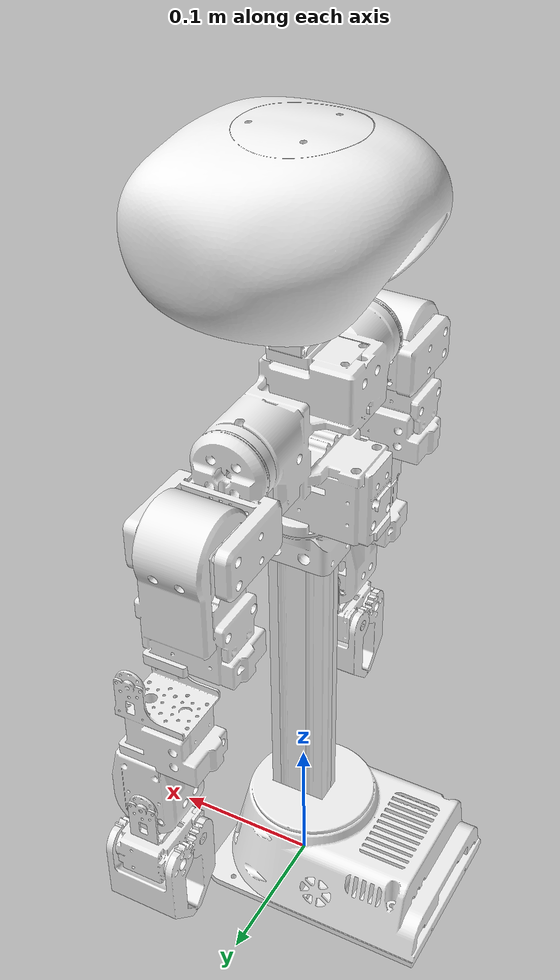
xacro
<?xml version="1.0" ?>
<robot name="rakuda" xmlns:xacro="http://www.ros.org/wiki/xacro">

<xacro:include filename="$(find rakuda_description)/urdf/materials.xacro" />
<xacro:include filename="$(find rakuda_description)/urdf/rakuda.ros2control" />
<xacro:include filename="$(find rakuda_description)/urdf/rakuda.gazebo" />
<xacro:include filename="$(find rakuda_description)/urdf/gemini_335_336.urdf.xacro" />

<!-- Used for fixing robot 'base_link'  to Gazebo 'world' -->
<link name="world"/>

<joint name="base_link_to_world_joint" type="fixed">
  <parent link="world"/>
  <child link="base_link"/>
</joint>

<link name="base_link">
  <inertial>
    <origin xyz="-0.020408922979267937 -4.8555006463835264e-05 0.05284203414197219" rpy="0 0 0"/>
    <mass value="1.1379124037846244"/>
    <inertia ixx="5787e-06" iyy="6743e-06" izz="3335e-06" ixy="-4e-06" iyz="-2e-06" ixz="-576e-06"/>
  </inertial>
  <visual>
    <origin xyz="0 0 0" rpy="0 0 0"/>
    <geometry>
      <mesh filename="file://$(find rakuda_description)/meshes/visual/base_link.stl" scale="0.001 0.001 0.001"/>
    </geometry>
    <material name="white"/>
  </visual>
  <collision>
    <origin xyz="0 0 0" rpy="0 0 0"/>
    <geometry>
      <mesh filename="file://$(find rakuda_description)/meshes/collision/base_link_collision.stl" scale="0.001 0.001 0.001"/>
    </geometry>
  </collision>
</link>

<link name="waist_link">
  <inertial>
    <origin xyz="0.00015195021146941867 -2.820226960486473e-06 -0.004137928658236423" rpy="0 0 0"/>
    <mass value="0.04400005195575271"/>
    <inertia ixx="10e-06" iyy="13e-06" izz="17e-06" ixy="0" iyz="0" ixz="0"/>
  </inertial>
  <visual>
    <origin xyz="0.0 0.0 -0.302" rpy="0 0 0"/>
    <geometry>
      <mesh filename="file://$(find rakuda_description)/meshes/visual/waist_link.stl" scale="0.001 0.001 0.001"/>
    </geometry>
    <material name="white"/>
  </visual>
  <collision>
    <origin xyz="0.0 0.0 -0.302" rpy="0 0 0"/>
    <geometry>
      <mesh filename="file://$(find rakuda_description)/meshes/collision/waist_link_collision.stl" scale="0.001 0.001 0.001"/>
    </geometry>
  </collision>
</link>

<link name="torso_link">
  <inertial>
    <origin xyz="-0.005791332469439025 1.1532258378440722e-08 0.06653504643352193" rpy="0 0 0"/>
    <mass value="0.7540141547961345"/>
    <inertia ixx="1985e-06" iyy="909e-06" izz="1513e-06" ixy="0" iyz="0" ixz="-55e-06"/>
  </inertial>
  <visual>
    <origin xyz="-0.0 -0.0 -0.3085" rpy="0 0 0"/>
    <geometry>
      <mesh filename="file://$(find rakuda_description)/meshes/visual/torso_link.stl" scale="0.001 0.001 0.001"/>
    </geometry>
    <material name="white"/>
  </visual>
  <collision>
    <origin xyz="-0.0 -0.0 -0.3085" rpy="0 0 0"/>
    <geometry>
      <mesh filename="file://$(find rakuda_description)/meshes/collision/torso_link_collision.stl" scale="0.001 0.001 0.001"/>
    </geometry>
  </collision>
</link>

<link name="neck_yaw_link">
  <inertial>
    <origin xyz="2.8236692876973818e-15 -0.0003318177210791965 0.010126539608700469" rpy="0 0 0"/>
    <mass value="0.01399997346170466"/>
    <inertia ixx="5e-06" iyy="3e-06" izz="4e-06" ixy="0" iyz="0" ixz="0"/>
  </inertial>
  <visual>
    <origin xyz="-0.0 -0.0 -0.43405" rpy="0 0 0"/>
    <geometry>
      <mesh filename="file://$(find rakuda_description)/meshes/visual/neck_yaw_link.stl" scale="0.001 0.001 0.001"/>
    </geometry>
    <material name="white"/>
  </visual>
  <collision>
    <origin xyz="-0.0 -0.0 -0.43405" rpy="0 0 0"/>
    <geometry>
      <mesh filename="file://$(find rakuda_description)/meshes/collision/neck_yaw_link_collision.stl" scale="0.001 0.001 0.001"/>
    </geometry>
  </collision>
</link>

<link name="neck_pitch_link">
  <inertial>
    <origin xyz="0.008434802102082811 -0.0003276428199875459 0.04341435318306919" rpy="0 0 0"/>
    <mass value="0.2822100615108845"/>
    <inertia ixx="695e-06" iyy="648e-06" izz="763e-06" ixy="0" iyz="-1e-06" ixz="42e-06"/>
  </inertial>
  <visual>
    <origin xyz="0.0 -0.0001 -0.4606" rpy="0 0 0"/>
    <geometry>
      <mesh filename="file://$(find rakuda_description)/meshes/visual/neck_pitch_link.stl" scale="0.001 0.001 0.001"/>
    </geometry>
    <material name="white"/>
  </visual>
  <collision>
    <origin xyz="0.5 -0.0001 -0.4606" rpy="0 0 0"/>
    <geometry>
      <mesh filename="file://$(find rakuda_description)/meshes/collision/neck_pitch_link_collision.stl" scale="0.001 0.001 0.001"/>
    </geometry>
  </collision>
</link>

<link name="head_camera_link">
<!-- TODO: replace this mass and inertial with official Orbbec camera URDF values -->
  <inertial>
    <origin xyz="-0.0009302798678163388 -2.567747878634704e-07 0.0006112316563195441" rpy="0 0 0"/>
    <mass value="0.00038890961357324327"/>
    <inertia ixx="0" iyy="0" izz="0" ixy="0" iyz="0" ixz="0"/>
  </inertial>
  <visual>
    <origin xyz="-0.062346 0.000141 -0.494924" rpy="0 0 0"/>
    <geometry>
      <mesh filename="file://$(find rakuda_description)/meshes/visual/head_camera_link.stl" scale="0.001 0.001 0.001"/>
    </geometry>
    <material name="white"/>
  </visual>
</link>

<link name="l_link1">
  <inertial>
    <origin xyz="8.165392508629886e-05 0.017114007906281148 -0.01682274344663298" rpy="0 0 0"/>
    <mass value="0.07299177430140238"/>
    <inertia ixx="40e-06" iyy="51e-06" izz="57e-06" ixy="0" iyz="8e-06" ixz="0"/>
  </inertial>
  <visual>
    <origin xyz="-0.0 -0.0826 -0.3946" rpy="0 0 0"/>
    <geometry>
      <mesh filename="file://$(find rakuda_description)/meshes/visual/l_link1.stl" scale="0.001 0.001 0.001"/>
    </geometry>
    <material name="white"/>
  </visual>
  <collision>
    <origin xyz="-0.0 -0.0826 -0.3946" rpy="0 0 0"/>
    <geometry>
      <mesh filename="file://$(find rakuda_description)/meshes/collision/l_link1_collision.stl" scale="0.001 0.001 0.001"/>
    </geometry>
  </collision>
</link>

<link name="r_link1">
  <inertial>
    <origin xyz="7.710992934052517e-05 -0.017114009124667 -0.016822741627550486" rpy="0 0 0"/>
    <mass value="0.07299176592385347"/>
    <inertia ixx="40e-06" iyy="51e-06" izz="57e-06" ixy="0" iyz="-8e-06" ixz="0"/>
  </inertial>
  <visual>
    <origin xyz="-0.0 0.0826 -0.3946" rpy="0 0 0"/>
    <geometry>
      <mesh filename="file://$(find rakuda_description)/meshes/visual/r_link1.stl" scale="0.001 0.001 0.001"/>
    </geometry>
    <material name="white"/>
  </visual>
  <collision>
    <origin xyz="-0.0 0.0826 -0.3946" rpy="0 0 0"/>
    <geometry>
      <mesh filename="file://$(find rakuda_description)/meshes/collision/r_link1_collision.stl" scale="0.001 0.001 0.001"/>
    </geometry>
  </collision>
</link>

<link name="l_link2">
  <inertial>
    <origin xyz="2.482738387163369e-05 0.000396191411047242 -0.03040144548272805" rpy="0 0 0"/>
    <mass value="0.2900252815965671"/>
    <inertia ixx="279e-06" iyy="303e-06" izz="102e-06" ixy="-1e-06" iyz="-2e-06" ixz="-7e-06"/>
  </inertial>
  <visual>
    <origin xyz="-0.0 -0.1236 -0.3706" rpy="0 0 0"/>
    <geometry>
      <mesh filename="file://$(find rakuda_description)/meshes/visual/l_link2.stl" scale="0.001 0.001 0.001"/>
    </geometry>
    <material name="white"/>
  </visual>
  <collision>
    <origin xyz="-0.0 -0.1236 -0.3706" rpy="0 0 0"/>
    <geometry>
      <mesh filename="file://$(find rakuda_description)/meshes/collision/l_link2_collision.stl" scale="0.001 0.001 0.001"/>
    </geometry>
  </collision>
</link>

<link name="r_link2">
  <inertial>
    <origin xyz="2.4825375508370262e-05 -0.0003961910521785711 -0.030401438771675282" rpy="0 0 0"/>
    <mass value="0.2900253610511383"/>
    <inertia ixx="0.000279" iyy="0.000303" izz="0.000102" ixy="1e-06" iyz="2e-06" ixz="-7e-06"/>
  </inertial>
  <visual>
    <origin xyz="-0.0 0.1236 -0.3706" rpy="0 0 0"/>
    <geometry>
      <mesh filename="file://$(find rakuda_description)/meshes/visual/r_link2.stl" scale="0.001 0.001 0.001"/>
    </geometry>
    <material name="white"/>
  </visual>
  <collision>
    <origin xyz="-0.0 0.1236 -0.3706" rpy="0 0 0"/>
    <geometry>
      <mesh filename="file://$(find rakuda_description)/meshes/collision/r_link2_collision.stl" scale="0.001 0.001 0.001"/>
    </geometry>
  </collision>
</link>

<link name="l_link3">
  <inertial>
    <origin xyz="0.012816931345662554 0.0004977011098152018 -0.019558162431457693" rpy="0 0 0"/>
    <mass value="0.10799652996016351"/>
    <inertia ixx="25e-06" iyy="43e-06" izz="40e-06" ixy="0" iyz="0" ixz="1e-06"/>
  </inertial>
  <visual>
    <origin xyz="-0.012 -0.1236 -0.2884" rpy="0 0 0"/>
    <geometry>
      <mesh filename="file://$(find rakuda_description)/meshes/visual/l_link3.stl" scale="0.001 0.001 0.001"/>
    </geometry>
    <material name="white"/>
  </visual>
  <collision>
    <origin xyz="-0.012 -0.1236 -0.2884" rpy="0 0 0"/>
    <geometry>
      <mesh filename="file://$(find rakuda_description)/meshes/collision/l_link3_collision.stl" scale="0.001 0.001 0.001"/>
    </geometry>
  </collision>
</link>

<link name="r_link3">
  <inertial>
    <origin xyz="0.01281693134567282 -0.0004977011098376977 -0.019558162431519532" rpy="0 0 0"/>
    <mass value="0.10799652996026934"/>
    <inertia ixx="25e-06" iyy="43e-06" izz="40e-06" ixy="0" iyz="0" ixz="1e-06"/>
  </inertial>
  <visual>
    <origin xyz="-0.012 0.1236 -0.2884" rpy="0 0 0"/>
    <geometry>
      <mesh filename="file://$(find rakuda_description)/meshes/visual/r_link3.stl" scale="0.001 0.001 0.001"/>
    </geometry>
    <material name="white"/>
  </visual>
  <collision>
    <origin xyz="-0.012 0.1236 -0.2884" rpy="0 0 0"/>
    <geometry>
      <mesh filename="file://$(find rakuda_description)/meshes/collision/r_link3_collision.stl" scale="0.001 0.001 0.001"/>
    </geometry>
  </collision>
</link>

<link name="l_link4">
  <inertial>
    <origin xyz="-0.013529205112779118 0.001169548907603693 -0.04421637055831898" rpy="0 0 0"/>
    <mass value="0.10699509679197633"/>
    <inertia ixx="30e-06" iyy="43e-06" izz="36e-06" ixy="1e-06" iyz="0" ixz="-2e-06"/>
  </inertial>
  <visual>
    <origin xyz="-0.036 -0.1236 -0.27035" rpy="0 0 0"/>
    <geometry>
      <mesh filename="file://$(find rakuda_description)/meshes/visual/l_link4.stl" scale="0.001 0.001 0.001"/>
    </geometry>
    <material name="white"/>
  </visual>
  <collision>
    <origin xyz="-0.036 -0.1236 -0.27035" rpy="0 0 0"/>
    <geometry>
      <mesh filename="file://$(find rakuda_description)/meshes/collision/l_link4_collision.stl" scale="0.001 0.001 0.001"/>
    </geometry>
  </collision>
</link>

<link name="r_link4">
  <inertial>
    <origin xyz="-0.013529205589267821 -0.0011695493323802958 -0.04421637085671126" rpy="0 0 0"/>
    <mass value="0.10699509934326328"/>
    <inertia ixx="30e-06" iyy="43e-06" izz="36e-06" ixy="-1e-06" iyz="0" ixz="-2e-06"/>
  </inertial>
  <visual>
    <origin xyz="-0.036 0.1236 -0.27035" rpy="0 0 0"/>
    <geometry>
      <mesh filename="file://$(find rakuda_description)/meshes/visual/r_link4.stl" scale="0.001 0.001 0.001"/>
    </geometry>
    <material name="white"/>
  </visual>
  <collision>
    <origin xyz="-0.036 0.1236 -0.27035" rpy="0 0 0"/>
    <geometry>
      <mesh filename="file://$(find rakuda_description)/meshes/collision/r_link4_collision.stl" scale="0.001 0.001 0.001"/>
    </geometry>
  </collision>
</link>

<link name="l_link5">
  <inertial>
    <origin xyz="-0.00010745262237027431 0.0004983218880769968 -0.02809682280934908" rpy="0 0 0"/>
    <mass value="0.10899653712889695"/>
    <inertia ixx="40e-06" iyy="44e-06" izz="26e-06" ixy="0" iyz="0" ixz="0"/>
  </inertial>
  <visual>
    <origin xyz="-0.036 -0.1236 -0.2049" rpy="0 0 0"/>
    <geometry>
      <mesh filename="file://$(find rakuda_description)/meshes/visual/l_link5.stl" scale="0.001 0.001 0.001"/>
    </geometry>
    <material name="white"/>
  </visual>
  <collision>
    <origin xyz="-0.036 -0.1236 -0.2049" rpy="0 0 0"/>
    <geometry>
      <mesh filename="file://$(find rakuda_description)/meshes/collision/l_link5_collision.stl" scale="0.001 0.001 0.001"/>
    </geometry>
  </collision>
</link>

<link name="r_link5">
  <inertial>
    <origin xyz="-0.00010749374651377458 -0.00049827898943898 -0.02809678801928564" rpy="0 0 0"/>
    <mass value="0.10899673027569862"/>
    <inertia ixx="40e-06" iyy="44e-06" izz="26e-06" ixy="0" iyz="0" ixz="0"/>
  </inertial>
  <visual>
    <origin xyz="-0.036 0.1236 -0.2049" rpy="0 0 0"/>
    <geometry>
      <mesh filename="file://$(find rakuda_description)/meshes/visual/r_link5.stl" scale="0.001 0.001 0.001"/>
    </geometry>
    <material name="white"/>
  </visual>
  <collision>
    <origin xyz="-0.036 0.1236 -0.2049" rpy="0 0 0"/>
    <geometry>
      <mesh filename="file://$(find rakuda_description)/meshes/collision/r_link5_collision.stl" scale="0.001 0.001 0.001"/>
    </geometry>
  </collision>
</link>

<link name="r_link6">
  <inertial>
    <origin xyz="0.0004978784895699889 -0.003188942119494928 -0.03994743914308038" rpy="0 0 0"/>
    <mass value="0.07399870180333049"/>
    <inertia ixx="23e-06" iyy="17e-06" izz="22e-06" ixy="0" iyz="0" ixz="0"/>
  </inertial>
  <visual>
    <origin xyz="-0.036 0.1236 -0.16585" rpy="0 0 0"/>
    <geometry>
      <mesh filename="file://$(find rakuda_description)/meshes/visual/r_link6.stl" scale="0.001 0.001 0.001"/>
    </geometry>
    <material name="white"/>
  </visual>
  <collision>
    <origin xyz="-0.036 0.1236 -0.16585" rpy="0 0 0"/>
    <geometry>
      <mesh filename="file://$(find rakuda_description)/meshes/collision/r_link6_collision.stl" scale="0.001 0.001 0.001"/>
    </geometry>
  </collision>
</link>

<link name="l_link6">
  <inertial>
    <origin xyz="0.000497878489597231 0.00318894211964936 -0.03994743914314852" rpy="0 0 0"/>
    <mass value="0.07399870180299768"/>
    <inertia ixx="23e-06" iyy="17e-06" izz="22e-06" ixy="0" iyz="0" ixz="0"/>
  </inertial>
  <visual>
    <origin xyz="-0.036 -0.1236 -0.16585" rpy="0 0 0"/>
    <geometry>
      <mesh filename="file://$(find rakuda_description)/meshes/visual/l_link6.stl" scale="0.001 0.001 0.001"/>
    </geometry>
    <material name="white"/>
  </visual>
  <collision>
    <origin xyz="-0.036 -0.1236 -0.16585" rpy="0 0 0"/>
    <geometry>
      <mesh filename="file://$(find rakuda_description)/meshes/collision/l_link6_collision.stl" scale="0.001 0.001 0.001"/>
    </geometry>
  </collision>
</link>

<link name="r_gripper_a">
  <inertial>
    <origin xyz="-8.852479904033345e-05 -0.003089211052713342 -0.02999149965192692" rpy="0 0 0"/>
    <mass value="0.017998423512260126"/>
    <inertia ixx="6e-06" iyy="10e-06" izz="5e-06" ixy="0" iyz="0" ixz="0"/>
  </inertial>
  <visual>
    <origin xyz="-0.036 0.1396 -0.1236" rpy="0 0 0"/>
    <geometry>
      <mesh filename="file://$(find rakuda_description)/meshes/visual/r_gripper_a.stl" scale="0.001 0.001 0.001"/>
    </geometry>
    <material name="white"/>
  </visual>
  <collision>
    <origin xyz="-0.036 0.1396 -0.1236" rpy="0 0 0"/>
    <geometry>
      <mesh filename="file://$(find rakuda_description)/meshes/collision/r_gripper_a_collision.stl" scale="0.001 0.001 0.001"/>
    </geometry>
  </collision>
</link>

<link name="r_gripper_b">
  <inertial>
    <origin xyz="-8.852479904033345e-05 0.003104658168288782 -0.030279426009768864" rpy="0 0 0"/>
    <mass value="0.018999892317782645"/>
    <inertia ixx="6e-06" iyy="10e-06" izz="5e-06" ixy="0" iyz="0" ixz="0"/>
  </inertial>
  <visual>
    <origin xyz="-0.036 0.1156 -0.12355" rpy="0 0 0"/>
    <geometry>
      <mesh filename="file://$(find rakuda_description)/meshes/visual/r_gripper_b.stl" scale="0.001 0.001 0.001"/>
    </geometry>
    <material name="white"/>
  </visual>
  <collision>
    <origin xyz="-0.036 0.1156 -0.12355" rpy="0 0 0"/>
    <geometry>
      <mesh filename="file://$(find rakuda_description)/meshes/collision/r_gripper_b_collision.stl" scale="0.001 0.001 0.001"/>
    </geometry>
  </collision>
</link>

<link name="l_gripper_a">
  <inertial>
    <origin xyz="-8.920360655783471e-05 0.003089714518583392 -0.029990508331487045" rpy="0 0 0"/>
    <mass value="0.017997801931831644"/>
    <inertia ixx="6e-06" iyy="10e-06" izz="5e-06" ixy="0" iyz="0" ixz="0"/>
  </inertial>
  <visual>
    <origin xyz="-0.036 -0.1396 -0.1236" rpy="0 0 0"/>
    <geometry>
      <mesh filename="file://$(find rakuda_description)/meshes/visual/l_gripper_a.stl" scale="0.001 0.001 0.001"/>
    </geometry>
    <material name="white"/>
  </visual>
  <collision>
    <origin xyz="-0.036 -0.1396 -0.1236" rpy="0 0 0"/>
    <geometry>
      <mesh filename="file://$(find rakuda_description)/meshes/collision/l_gripper_a_collision.stl" scale="0.001 0.001 0.001"/>
    </geometry>
  </collision>
</link>

<link name="l_gripper_b">
  <inertial>
    <origin xyz="-8.920360655783471e-05 -0.0031035251440137968 -0.030280490115251982" rpy="0 0 0"/>
    <mass value="0.019000550359800868"/>
    <inertia ixx="6e-06" iyy="10e-06" izz="5e-06" ixy="0" iyz="0" ixz="0"/>
  </inertial>
  <visual>
    <origin xyz="-0.036 -0.1156 -0.12355" rpy="0 0 0"/>
    <geometry>
      <mesh filename="file://$(find rakuda_description)/meshes/visual/l_gripper_b.stl" scale="0.001 0.001 0.001"/>
    </geometry>
    <material name="white"/>
  </visual>
  <collision>
    <origin xyz="-0.036 -0.1156 -0.12355" rpy="0 0 0"/>
    <geometry>
      <mesh filename="file://$(find rakuda_description)/meshes/collision/l_gripper_b_collision.stl" scale="0.001 0.001 0.001"/>
    </geometry>
  </collision>
</link>

<joint name="base_waist_joint" type="fixed">
  <origin xyz="0.0 0.0 0.302" rpy="0 0 0"/>
  <parent link="base_link"/>
  <child link="waist_link"/>
</joint>

<joint name="waist_yaw_joint" type="revolute">
  <origin xyz="0.0 0.0 0.0065" rpy="0 0 0"/>
  <parent link="waist_link"/>
  <child link="torso_link"/>
  <axis xyz="0.0 0.0 -1.0"/>
  <limit upper="1.396263" lower="-1.396263" effort="100" velocity="100"/>
</joint>

<joint name="neck_yaw_joint" type="revolute">
  <origin xyz="0.0 0.0 0.12555" rpy="0 0 0"/>
  <parent link="torso_link"/>
  <child link="neck_yaw_link"/>
  <axis xyz="0.0 0.0 1.0"/>
  <limit upper="1.22173" lower="-1.22173" effort="100" velocity="100"/>
</joint>

<joint name="neck_pitch_joint" type="revolute">
  <origin xyz="-0.0 0.0001 0.02655" rpy="0 0 0"/>
  <parent link="neck_yaw_link"/>
  <child link="neck_pitch_link"/>
  <axis xyz="0.0 -1.0 0.0"/>
  <limit upper="0.610865" lower="-0.872665" effort="100" velocity="100"/>
</joint>

<joint name="head_camera_joint" type="fixed">
  <origin xyz="0.062346 -0.000241 0.034324" rpy="0 0 0"/>
  <parent link="neck_pitch_link"/>
  <child link="head_camera_link"/>
</joint>

<joint name="l_arm_joint1" type="revolute">
  <origin xyz="0.0 0.0826 0.0861" rpy="0 0 0"/>
  <parent link="torso_link"/>
  <child link="l_link1"/>
  <axis xyz="0.0 1.0 0.0"/>
  <limit upper="0.0" lower="-2.96706" effort="100" velocity="100"/>
</joint>

<joint name="r_arm_joint1" type="revolute">
  <origin xyz="0.0 -0.0826 0.0861" rpy="0 0 0"/>
  <parent link="torso_link"/>
  <child link="r_link1"/>
  <axis xyz="0.0 -1.0 0.0"/>
  <limit upper="2.96706" lower="0.0" effort="100" velocity="100"/>
</joint>

<joint name="l_arm_joint2" type="revolute">
  <origin xyz="0.0 0.041 -0.024" rpy="0 0 0"/>
  <parent link="l_link1"/>
  <child link="l_link2"/>
  <axis xyz="1.0 0.0 0.0"/>
  <limit upper="1.570796" lower="-0.0" effort="100" velocity="100"/>
</joint>

<joint name="r_arm_joint2" type="revolute">
  <origin xyz="0.0 -0.041 -0.024" rpy="0 0 0"/>
  <parent link="r_link1"/>
  <child link="r_link2"/>
  <axis xyz="1.0 0.0 0.0"/>
  <limit upper="0.0" lower="-1.570796" effort="100" velocity="100"/>
</joint>

<joint name="l_arm_joint3" type="revolute">
  <origin xyz="0.012 0.0 -0.0822" rpy="0 0 0"/>
  <parent link="l_link2"/>
  <child link="l_link3"/>
  <axis xyz="0.0 0.0 -1.0"/>
  <limit upper="1.396263" lower="-1.396263" effort="100" velocity="100"/>
</joint>

<joint name="r_arm_joint3" type="revolute">
  <origin xyz="0.012 0.0 -0.0822" rpy="0 0 0"/>
  <parent link="r_link2"/>
  <child link="r_link3"/>
  <axis xyz="0.0 0.0 -1.0"/>
  <limit upper="1.396263" lower="-1.396263" effort="100" velocity="100"/>
</joint>

<joint name="l_arm_joint4" type="revolute">
  <origin xyz="0.024 0.0 -0.01805" rpy="0 0 0"/>
  <parent link="l_link3"/>
  <child link="l_link4"/>
  <axis xyz="0.0 1.0 0.0"/>
  <limit upper="0.174533" lower="-2.356194" effort="100" velocity="100"/>
</joint>

<joint name="r_arm_joint4" type="revolute">
  <origin xyz="0.024 0.0 -0.01805" rpy="0 0 0"/>
  <parent link="r_link3"/>
  <child link="r_link4"/>
  <axis xyz="0.0 -1.0 0.0"/>
  <limit upper="2.356194" lower="-0.174533" effort="100" velocity="100"/>
</joint>

<joint name="l_arm_joint5" type="revolute">
  <origin xyz="0.0 0.0 -0.06545" rpy="0 0 0"/>
  <parent link="l_link4"/>
  <child link="l_link5"/>
  <axis xyz="0.0 0.0 -1.0"/>
  <limit upper="1.570796" lower="-1.570796" effort="100" velocity="100"/>
</joint>

<joint name="r_arm_joint5" type="revolute">
  <origin xyz="0.0 0.0 -0.06545" rpy="0 0 0"/>
  <parent link="r_link4"/>
  <child link="r_link5"/>
  <axis xyz="0.0 0.0 -1.0"/>
  <limit upper="1.570796" lower="-1.570796" effort="100" velocity="100"/>
</joint>

<joint name="r_arm_joint6" type="revolute">
  <origin xyz="0.0 0.0 -0.03905" rpy="0 0 0"/>
  <parent link="r_link5"/>
  <child link="r_link6"/>
  <axis xyz="0.0 -1.0 0.0"/>
  <limit upper="1.396263" lower="-1.396263" effort="100" velocity="100"/>
</joint>

<joint name="l_arm_joint6" type="revolute">
  <origin xyz="0.0 0.0 -0.03905" rpy="0 0 0"/>
  <parent link="l_link5"/>
  <child link="l_link6"/>
  <axis xyz="0.0 1.0 0.0"/>
  <limit upper="1.396263" lower="-1.396263" effort="100" velocity="100"/>
</joint>

<joint name="r_gripper_joint" type="revolute">
  <origin xyz="0.0 -0.016 -0.04225" rpy="0 0 0"/>
  <parent link="r_link6"/>
  <child link="r_gripper_a"/>
  <axis xyz="1.0 0.0 0.0"/>
  <limit upper="0.0" lower="-1.22173" effort="100" velocity="100"/>
</joint>

<joint name="r_gripper_mimic_joint" type="revolute">
  <origin xyz="0.0 0.008 -0.0423" rpy="0 0 0"/>
  <limit lower="-1.0" upper="0.01" effort="10" velocity="1.0"/>
  <parent link="r_link6"/>
  <child link="r_gripper_b"/>
  <axis xyz="1.0 0.0 0.0"/>
  <mimic joint="r_gripper_joint" multiplier="-1.0" offset="0.0"/>
</joint>

<joint name="l_gripper_joint" type="revolute">
  <origin xyz="0.0 0.016 -0.04225" rpy="0 0 0"/>
  <parent link="l_link6"/>
  <child link="l_gripper_a"/>
  <axis xyz="1.0 0.0 0.0"/>
  <limit upper="1.22173" lower="0.0" effort="100" velocity="100"/>
</joint>

<joint name="l_gripper_mimic_joint" type="revolute">
  <origin xyz="0.0 -0.008 -0.0423" rpy="0 0 0"/>
  <limit lower="-0.01" upper="1.0" effort="10" velocity="1.0"/>
  <parent link="l_link6"/>
  <child link="l_gripper_b"/>
  <axis xyz="1.0 0.0 0.0"/>
  <mimic joint="l_gripper_joint" multiplier="-1.0" offset="0.0"/>
</joint>

</robot>

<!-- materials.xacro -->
<robot name="rakuda" xmlns:xacro="http://www.ros.org/wiki/xacro" >

<material name="silver">
  <color rgba="0.7 0.7 0.7 1.0"/>
</material>

<material name="white">
  <color rgba="0.95 0.95 0.95 1.0"/>
</material>

</robot>

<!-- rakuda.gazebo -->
<robot name="rakuda" xmlns:xacro="http://www.ros.org/wiki/xacro" >

<xacro:property name="body_color" value="Gazebo/Silver" />

<gazebo reference="base_link">
  <material>${body_color}</material>
  <mu1>0.2</mu1>
  <mu2>0.2</mu2>
  <self_collide>true</self_collide>
  <gravity>true</gravity>
</gazebo>

<gazebo reference="waist_link_1">
  <material>${body_color}</material>
  <mu1>0.2</mu1>
  <mu2>0.2</mu2>
  <self_collide>true</self_collide>
</gazebo>

<gazebo reference="torso_link_1">
  <material>${body_color}</material>
  <mu1>0.2</mu1>
  <mu2>0.2</mu2>
  <self_collide>true</self_collide>
</gazebo>

<gazebo reference="neck_yaw_link_1">
  <material>${body_color}</material>
  <mu1>0.2</mu1>
  <mu2>0.2</mu2>
  <self_collide>true</self_collide>
</gazebo>

<gazebo reference="neck_pitch_link_1">
  <material>${body_color}</material>
  <mu1>0.2</mu1>
  <mu2>0.2</mu2>
  <self_collide>true</self_collide>
</gazebo>

<gazebo reference="head_camera_link_1">
  <material>${body_color}</material>
  <mu1>0.2</mu1>
  <mu2>0.2</mu2>
  <self_collide>true</self_collide>
</gazebo>

<gazebo reference="l_link1_1">
  <material>${body_color}</material>
  <mu1>0.2</mu1>
  <mu2>0.2</mu2>
  <self_collide>true</self_collide>
</gazebo>

<gazebo reference="r_link1_1">
  <material>${body_color}</material>
  <mu1>0.2</mu1>
  <mu2>0.2</mu2>
  <self_collide>true</self_collide>
</gazebo>

<gazebo reference="l_link2_1">
  <material>${body_color}</material>
  <mu1>0.2</mu1>
  <mu2>0.2</mu2>
  <self_collide>true</self_collide>
</gazebo>

<gazebo reference="r_link2_1">
  <material>${body_color}</material>
  <mu1>0.2</mu1>
  <mu2>0.2</mu2>
  <self_collide>true</self_collide>
</gazebo>

<gazebo reference="l_link3_1">
  <material>${body_color}</material>
  <mu1>0.2</mu1>
  <mu2>0.2</mu2>
  <self_collide>true</self_collide>
</gazebo>

<gazebo reference="r_link3_1">
  <material>${body_color}</material>
  <mu1>0.2</mu1>
  <mu2>0.2</mu2>
  <self_collide>true</self_collide>
</gazebo>

<gazebo reference="l_link4_1">
  <material>${body_color}</material>
  <mu1>0.2</mu1>
  <mu2>0.2</mu2>
  <self_collide>true</self_collide>
</gazebo>

<gazebo reference="r_link4_1">
  <material>${body_color}</material>
  <mu1>0.2</mu1>
  <mu2>0.2</mu2>
  <self_collide>true</self_collide>
</gazebo>

<gazebo reference="l_link5_1">
  <material>${body_color}</material>
  <mu1>0.2</mu1>
  <mu2>0.2</mu2>
  <self_collide>true</self_collide>
</gazebo>

<gazebo reference="r_link5_1">
  <material>${body_color}</material>
  <mu1>0.2</mu1>
  <mu2>0.2</mu2>
  <self_collide>true</self_collide>
</gazebo>

<gazebo reference="r_link6_1">
  <material>${body_color}</material>
  <mu1>0.2</mu1>
  <mu2>0.2</mu2>
  <self_collide>true</self_collide>
</gazebo>

<gazebo reference="l_link6_1">
  <material>${body_color}</material>
  <mu1>0.2</mu1>
  <mu2>0.2</mu2>
  <self_collide>true</self_collide>
</gazebo>

<gazebo reference="r_gripper_a_1">
  <material>${body_color}</material>
  <mu1>0.2</mu1>
  <mu2>0.2</mu2>
  <self_collide>true</self_collide>
</gazebo>

<gazebo reference="r_gripper_b_1">
  <material>${body_color}</material>
  <mu1>0.2</mu1>
  <mu2>0.2</mu2>
  <self_collide>true</self_collide>
</gazebo>

<gazebo reference="l_gripper_a_1">
  <material>${body_color}</material>
  <mu1>0.2</mu1>
  <mu2>0.2</mu2>
  <self_collide>true</self_collide>
</gazebo>

<gazebo reference="l_gripper_b_1">
  <material>${body_color}</material>
  <mu1>0.2</mu1>
  <mu2>0.2</mu2>
  <self_collide>true</self_collide>
</gazebo>

</robot>
